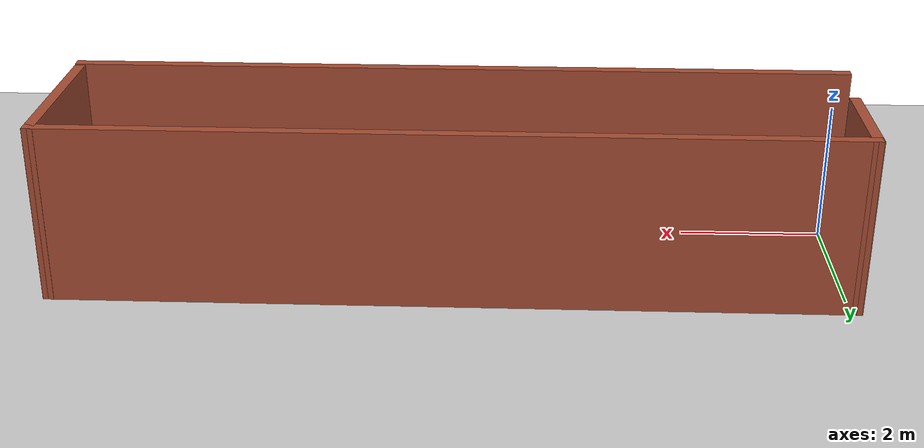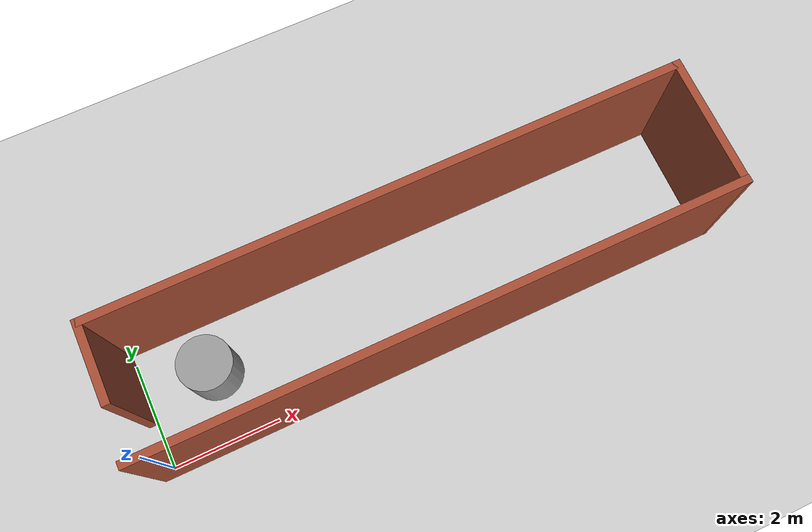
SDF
<sdf version="1.7">
 <world name="default">
  <light name="sun" type="directional">
   <pose>0 0 10 0 -0 0</pose>
   <diffuse>0.8 0.8 0.8 1</diffuse>
   <specular>0.2 0.2 0.2 1</specular>
   <attenuation>
    <range>1000</range>
    <constant>0.9</constant>
    <linear>0.01</linear>
    <quadratic>0.001</quadratic>
   </attenuation>
   <direction>-0.5 0.1 -0.9</direction>
   <spot><inner_angle>0</inner_angle><outer_angle>0</outer_angle><falloff>0</falloff></spot>
  </light>
  <model name="ground_plane">
   <static>1</static>
   <link name="link">
    <collision name="collision">
     <geometry><plane><normal>0 0 1</normal><size>100 100</size></plane></geometry>
     <surface>
      <contact><collide_bitmask>65535</collide_bitmask></contact>
      <friction><ode><mu>100</mu><mu2>50</mu2></ode></friction>
     </surface>
    </collision>
    <visual name="visual">
     <cast_shadows>0</cast_shadows>
     <geometry><plane><normal>0 0 1</normal><size>100 100</size></plane></geometry>
     <material>
      <script><uri>file://media/materials/scripts/gazebo.material</uri><name>Gazebo/Grey</name></script>
     </material>
    </visual>
   </link>
  </model>
  <gravity>0 0 -9.8</gravity>
  <magnetic_field>6e-06 2.3e-05 -4.2e-05</magnetic_field>
  <atmosphere type="adiabatic"/>
  <physics type="ode">
   <max_step_size>0.001</max_step_size>
   <real_time_factor>1</real_time_factor>
   <real_time_update_rate>1000</real_time_update_rate>
  </physics>
  <scene><ambient>0.4 0.4 0.4 1</ambient><background>0.7 0.7 0.7 1</background><shadows>1</shadows></scene>
  <spherical_coordinates>
   <surface_model>EARTH_WGS84</surface_model>
   <latitude_deg>0</latitude_deg>
   <longitude_deg>0</longitude_deg>
   <elevation>0</elevation>
   <heading_deg>0</heading_deg>
  </spherical_coordinates>
  <model name="brick_world">
   <pose>5.31079 1.87525 0 0 -0 0</pose>
   <link name="Wall_4">
    <collision name="Wall_4_Collision">
     <geometry><box><size>11 0.15 2.515</size></box></geometry>
     <pose>0 0 1.2575 0 -0 0</pose>
    </collision>
    <visual name="Wall_4_Visual">
     <pose>0 0 1.2575 0 -0 0</pose>
     <geometry><box><size>11 0.15 2.515</size></box></geometry>
     <material>
      <script><uri>file://media/materials/scripts/gazebo.material</uri><name>Gazebo/Bricks</name></script>
      <ambient>1 1 1 1</ambient>
     </material>
     <meta><layer>0</layer></meta>
    </visual>
    <pose>-0.030908 -1.96156 0 0 -0 -0.000922</pose>
   </link>
   <link name="Wall_7">
    <collision name="Wall_7_Collision">
     <geometry><box><size>1.51 0.15 2.5</size></box></geometry>
     <pose>0 0 1.25 0 -0 0</pose>
    </collision>
    <visual name="Wall_7_Visual">
     <pose>0 0 1.25 0 -0 0</pose>
     <geometry><box><size>1.51 0.15 2.5</size></box></geometry>
     <material>
      <script><uri>file://media/materials/scripts/gazebo.material</uri><name>Gazebo/Bricks</name></script>
      <ambient>1 1 1 1</ambient>
     </material>
     <meta><layer>0</layer></meta>
    </visual>
    <pose>-5.39591 -0.266559 0 0 -0 1.5708</pose>
   </link>
   <link name="Wall_8">
    <collision name="Wall_8_Collision">
     <geometry><box><size>10.99 0.15 2.5</size></box></geometry>
     <pose>0 0 1.25 0 -0 0</pose>
    </collision>
    <visual name="Wall_8_Visual">
     <pose>0 0 1.25 0 -0 0</pose>
     <geometry><box><size>10.99 0.15 2.5</size></box></geometry>
     <material>
      <script><uri>file://media/materials/scripts/gazebo.material</uri><name>Gazebo/Bricks</name></script>
      <ambient>1 1 1 1</ambient>
     </material>
     <meta><layer>0</layer></meta>
    </visual>
    <pose>0.034092 0.403441 0 0 -0 -0.001845</pose>
   </link>
   <link name="Wall_9">
    <collision name="Wall_9_Collision">
     <geometry><box><size>2.51076 0.15 2.5</size></box></geometry>
     <pose>0 0 1.25 0 -0 0</pose>
    </collision>
    <visual name="Wall_9_Visual">
     <pose>0 0 1.25 0 -0 0</pose>
     <geometry><box><size>2.51076 0.15 2.5</size></box></geometry>
     <material>
      <script><uri>file://media/materials/scripts/gazebo.material</uri><name>Gazebo/Bricks</name></script>
      <ambient>1 1 1 1</ambient>
     </material>
     <meta><layer>0</layer></meta>
    </visual>
    <pose>5.42409 -0.786559 0 0 -0 -1.59621</pose>
   </link>
   <static>1</static>
  </model>
  <model name="unit_cylinder">
   <pose>1.28465 1.27352 0.499997 3e-06 4e-06 -0</pose>
   <link name="link">
    <inertial>
     <mass>1</mass>
     <inertia><ixx>0.145833</ixx><ixy>0</ixy><ixz>0</ixz><iyy>0.145833</iyy><iyz>0</iyz><izz>0.125</izz></inertia>
    </inertial>
    <collision name="collision">
     <geometry><cylinder><radius>0.5</radius><length>1</length></cylinder></geometry>
    </collision>
    <visual name="visual">
     <geometry><cylinder><radius>0.5</radius><length>1</length></cylinder></geometry>
     <material>
      <script><name>Gazebo/Grey</name><uri>file://media/materials/scripts/gazebo.material</uri></script>
     </material>
    </visual>
   </link>
  </model>
 </world>
</sdf>
